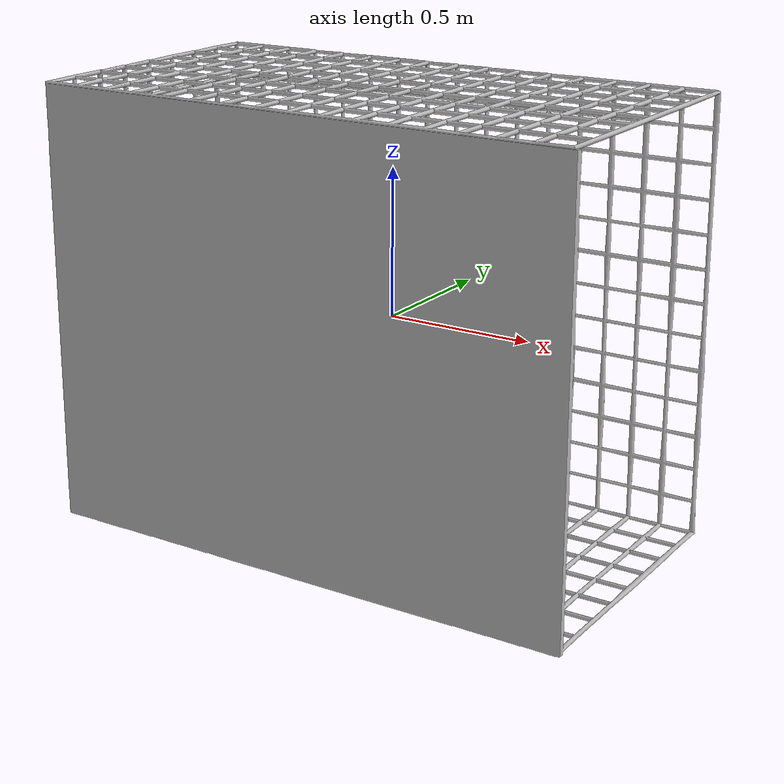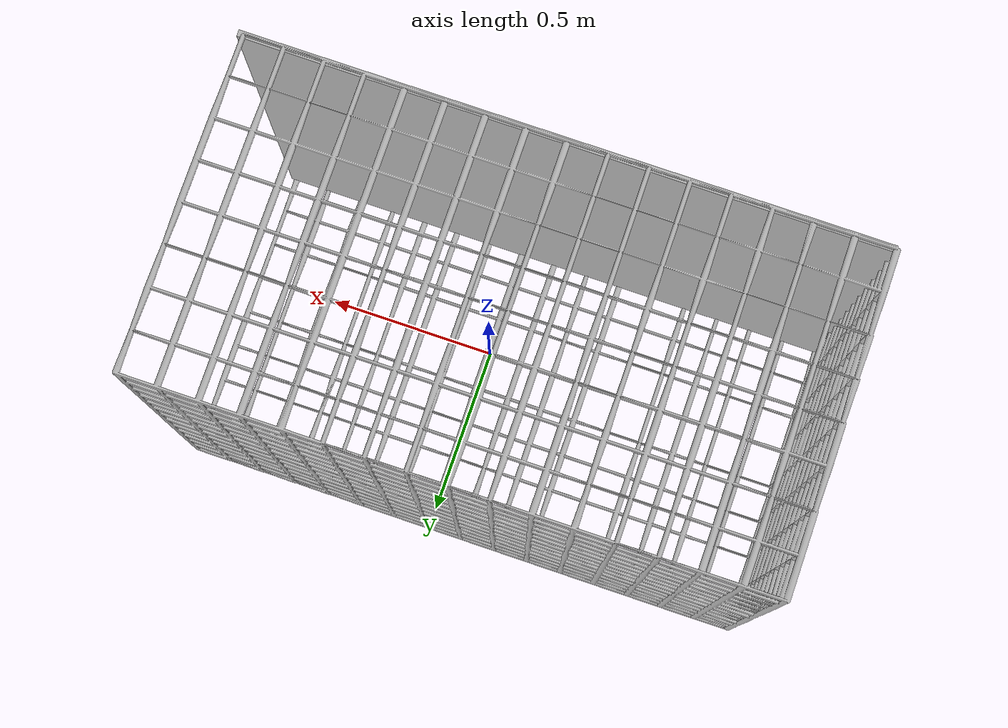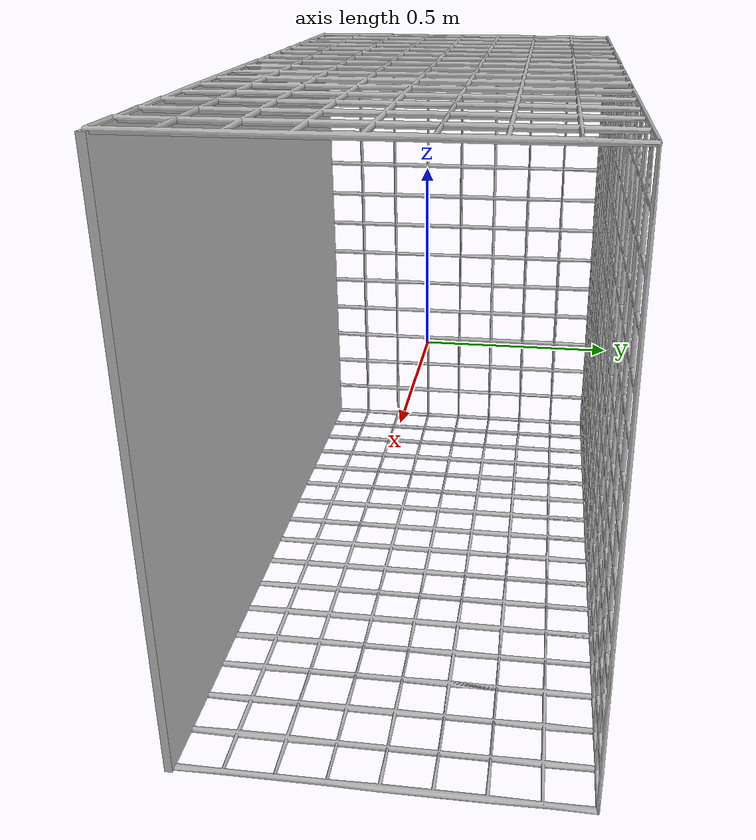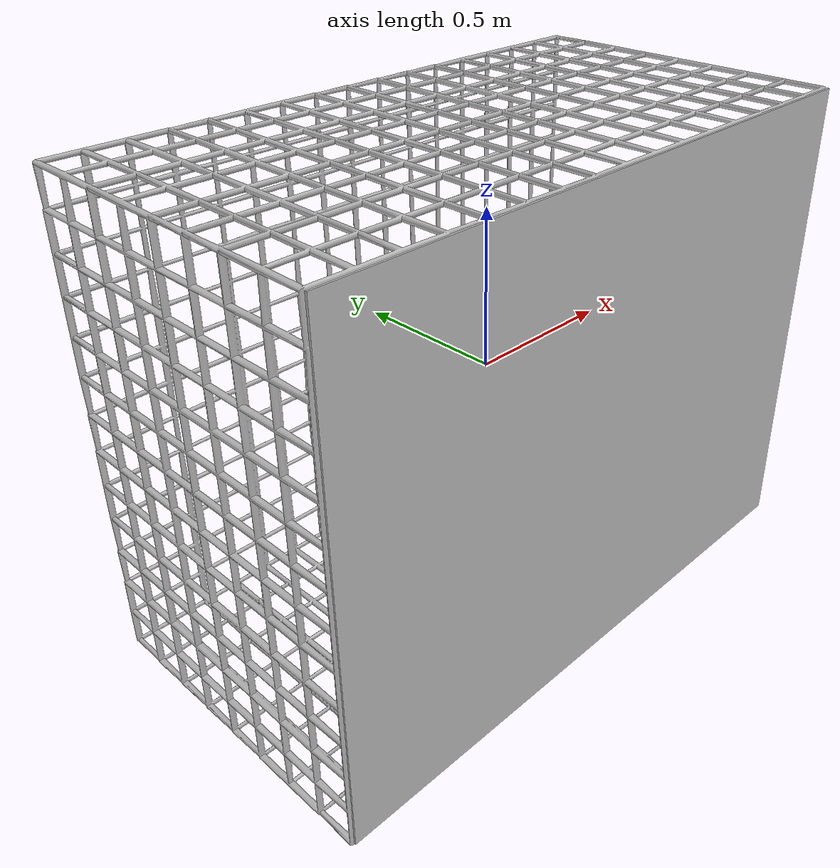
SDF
<?xml version="1.0" ?>
<sdf version="1.6">
  <model name="cage">
    <static>true</static>
    <link name="cage_link">
      <visual name="cage_visual">
        <geometry>
          <mesh>
            <uri>model://cage/meshes/Cage.obj</uri>
            <!-- Optional: Uncomment and adjust if your mesh is too large/small -->
            <scale>2 2 2</scale>
          </mesh>
        </geometry>
      </visual>
      <collision name="cage_collision">
        <geometry>
          <mesh>
            <uri>model://cage/meshes/Cage.obj</uri>
          </mesh>
        </geometry>
      </collision>
    </link>
  </model>
</sdf>
